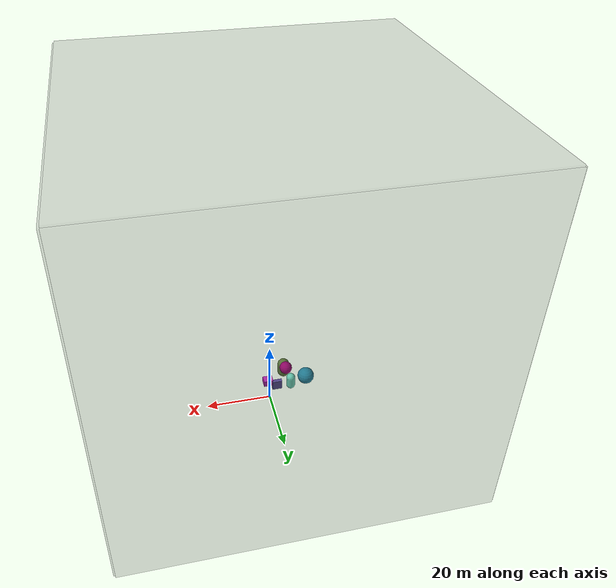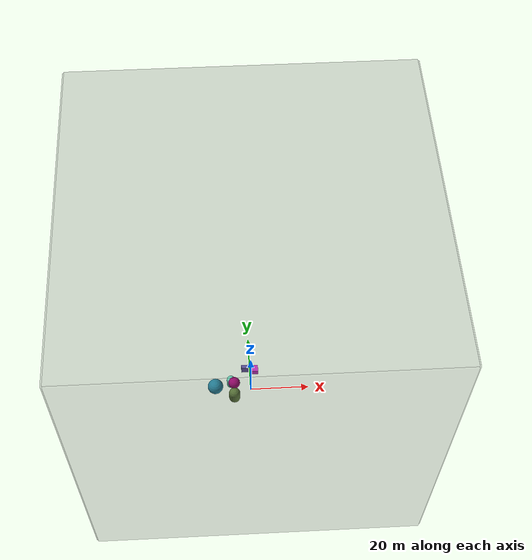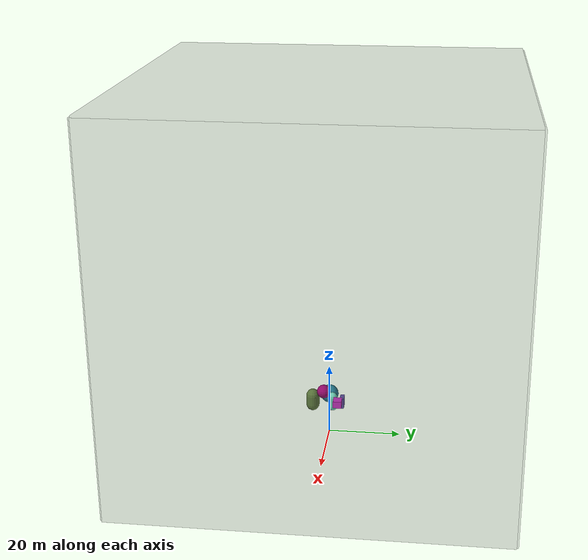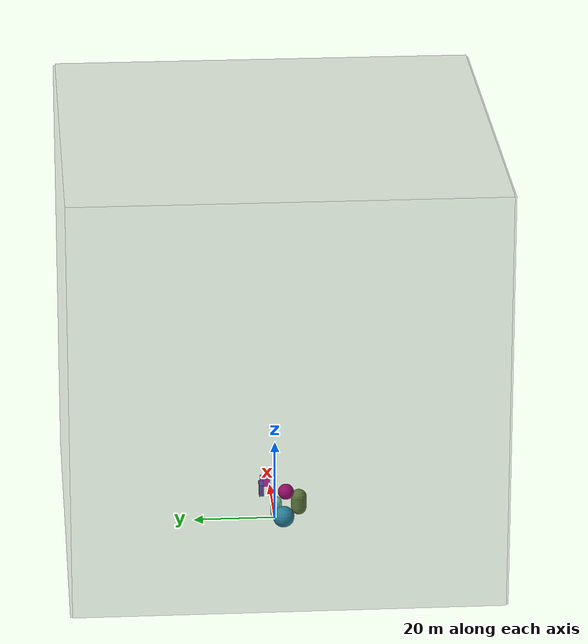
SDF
<!-- seed: 1722830644 -->
<sdf version='1.11'>
  <world name='world_0'>
    <gravity>0 0 -9.8066499999999994</gravity>
    <magnetic_field>5.5644999999999998e-06 2.2875799999999999e-05 -4.2388400000000002e-05</magnetic_field>
    <wind>
      <linear_velocity>5 6 0</linear_velocity>
    </wind>
    <physics default='false' type='ode'>
      <max_step_size>0.001</max_step_size>
      <real_time_factor>1</real_time_factor>
      <max_contacts>20</max_contacts>
    </physics>
    <model name='model_620'>
      <static>false</static>
      <self_collide>false</self_collide>
      <allow_auto_disable>true</allow_auto_disable>
      <enable_wind>false</enable_wind>
      <pose>-8.7825502009677514 1.2814883884424475 1.7874707938079981 0 0 0</pose>
      <link name='link_2787'>
        <pose>3.0916705062352818 -6.7132869151331853 4.8853672655625848 0 0 0</pose>
        <inertial>
          <pose>0 0 0 0 0 0</pose>
          <mass>1</mass>
          <inertia>
            <ixx>1</ixx>
            <ixy>0</ixy>
            <ixz>0</ixz>
            <iyy>1</iyy>
            <iyz>0</iyz>
            <izz>1</izz>
          </inertia>
        </inertial>
        <enable_wind>false</enable_wind>
        <collision name='collision_2787'>
          <pose>0 0 0 0 0 0</pose>
          <geometry>
            <capsule>
              <radius>1.8859126087736804</radius>
              <length>2.6854850593282826</length>
            </capsule>
          </geometry>
          <surface>
            <contact>
              <collide_bitmask>255</collide_bitmask>
            </contact>
            <friction>
              <ode>
                <mu>1</mu>
                <mu2>1</mu2>
                <slip1>0</slip1>
                <slip2>0</slip2>
                <fdir1>0 0 0</fdir1>
              </ode>
            </friction>
          </surface>
        </collision>
        <visual name='visual_2787'>
          <pose>0 0 0 0 0 0</pose>
          <geometry>
            <capsule>
              <radius>1.8859126087736804</radius>
              <length>2.6854850593282826</length>
            </capsule>
          </geometry>
          <cast_shadows>true</cast_shadows>
          <laser_retro>0</laser_retro>
          <transparency>0</transparency>
          <visibility_flags>4294967295</visibility_flags>
          <material>
            <ambient>0.399397075 0.525695145 0.251024008 1</ambient>
            <diffuse>0.399397075 0.525695145 0.251024008 1</diffuse>
            <specular>0 0 0 1</specular>
            <emissive>0 0 0 1</emissive>
            <render_order>0</render_order>
            <lighting>true</lighting>
            <double_sided>false</double_sided>
            <shader type='pixel'/>
          </material>
        </visual>
      </link>
      <link name='link_2788'>
        <pose>2.0358466114806966 -1.0823147693989359 4.0404634519940466 0 0 0</pose>
        <inertial>
          <pose>0 0 0 0 0 0</pose>
          <mass>1</mass>
          <inertia>
            <ixx>1</ixx>
            <ixy>0</ixy>
            <ixz>0</ixz>
            <iyy>1</iyy>
            <iyz>0</iyz>
            <izz>1</izz>
          </inertia>
        </inertial>
        <enable_wind>false</enable_wind>
        <collision name='collision_2788'>
          <pose>0 0 0 0 0 0</pose>
          <geometry>
            <capsule>
              <radius>1.387069172041602</radius>
              <length>2.7800379269529309</length>
            </capsule>
          </geometry>
          <surface>
            <contact>
              <collide_bitmask>255</collide_bitmask>
            </contact>
            <friction>
              <ode>
                <mu>1</mu>
                <mu2>1</mu2>
                <slip1>0</slip1>
                <slip2>0</slip2>
                <fdir1>0 0 0</fdir1>
              </ode>
            </friction>
          </surface>
        </collision>
        <visual name='visual_2788'>
          <pose>0 0 0 0 0 0</pose>
          <geometry>
            <capsule>
              <radius>1.387069172041602</radius>
              <length>2.7800379269529309</length>
            </capsule>
          </geometry>
          <cast_shadows>true</cast_shadows>
          <laser_retro>0</laser_retro>
          <transparency>0</transparency>
          <visibility_flags>4294967295</visibility_flags>
          <material>
            <ambient>0.47973457 0.940891325 0.814894438 1</ambient>
            <diffuse>0.47973457 0.940891325 0.814894438 1</diffuse>
            <specular>0 0 0 1</specular>
            <emissive>0 0 0 1</emissive>
            <render_order>0</render_order>
            <lighting>true</lighting>
            <double_sided>false</double_sided>
            <shader type='pixel'/>
          </material>
        </visual>
      </link>
      <link name='link_2789'>
        <pose>-3.2808541868936452 -2.5620737619710461 3.8775885226496776 0 0 0</pose>
        <inertial>
          <pose>0 0 0 0 0 0</pose>
          <mass>1</mass>
          <inertia>
            <ixx>1</ixx>
            <ixy>0</ixy>
            <ixz>0</ixz>
            <iyy>1</iyy>
            <iyz>0</iyz>
            <izz>1</izz>
          </inertia>
        </inertial>
        <enable_wind>false</enable_wind>
        <collision name='collision_2789'>
          <pose>0 0 0 0 0 0</pose>
          <geometry>
            <sphere>
              <radius>2.6031197391650305</radius>
            </sphere>
          </geometry>
          <surface>
            <contact>
              <collide_bitmask>255</collide_bitmask>
            </contact>
            <friction>
              <ode>
                <mu>1</mu>
                <mu2>1</mu2>
                <slip1>0</slip1>
                <slip2>0</slip2>
                <fdir1>0 0 0</fdir1>
              </ode>
            </friction>
          </surface>
        </collision>
        <visual name='visual_2789'>
          <pose>0 0 0 0 0 0</pose>
          <geometry>
            <sphere>
              <radius>2.6031197391650305</radius>
            </sphere>
          </geometry>
          <cast_shadows>true</cast_shadows>
          <laser_retro>0</laser_retro>
          <transparency>0</transparency>
          <visibility_flags>4294967295</visibility_flags>
          <material>
            <ambient>0.157117143 0.58405441 0.692798793 1</ambient>
            <diffuse>0.157117143 0.58405441 0.692798793 1</diffuse>
            <specular>0 0 0 1</specular>
            <emissive>0 0 0 1</emissive>
            <render_order>0</render_order>
            <lighting>true</lighting>
            <double_sided>false</double_sided>
            <shader type='pixel'/>
          </material>
        </visual>
      </link>
      <joint name='joint_1858' type='gearbox'>
        <pose>0 0 0 0 0 0</pose>
        <parent>link_2789</parent>
        <child>link_2787</child>
        <axis>
          <xyz>0.59737483691013493 0.7999372757993527 0.056953129969300492</xyz>
          <limit>
            <lower>-inf</lower>
            <upper>inf</upper>
            <effort>inf</effort>
            <velocity>0.60658171087120016</velocity>
            <stiffness>100000000</stiffness>
            <dissipation>1</dissipation>
          </limit>
          <dynamics>
            <spring_reference>0</spring_reference>
            <spring_stiffness>0</spring_stiffness>
            <damping>0</damping>
            <friction>0</friction>
          </dynamics>
        </axis>
        <axis2>
          <xyz>0.92347861918292906 0.25689294828716963 0.28494429812213501</xyz>
          <limit>
            <lower>-inf</lower>
            <upper>inf</upper>
            <effort>inf</effort>
            <velocity>9.2791356085167731</velocity>
            <stiffness>100000000</stiffness>
            <dissipation>1</dissipation>
          </limit>
          <dynamics>
            <spring_reference>0</spring_reference>
            <spring_stiffness>0</spring_stiffness>
            <damping>0</damping>
            <friction>0</friction>
          </dynamics>
        </axis2>
      </joint>
      <joint name='joint_1859' type='prismatic'>
        <pose>0 0 0 0 0 0</pose>
        <parent>link_2787</parent>
        <child>link_2788</child>
        <axis>
          <xyz>0.15948079447761759 0.69078240903438481 0.7052556554622158</xyz>
          <limit>
            <lower>-inf</lower>
            <upper>inf</upper>
            <effort>inf</effort>
            <velocity>8.951494390472952</velocity>
            <stiffness>100000000</stiffness>
            <dissipation>1</dissipation>
          </limit>
          <dynamics>
            <spring_reference>0</spring_reference>
            <spring_stiffness>0</spring_stiffness>
            <damping>0</damping>
            <friction>0</friction>
          </dynamics>
        </axis>
        <axis2>
          <xyz>0.095191238955646199 0.82554443824674728 0.55625085034177824</xyz>
          <limit>
            <lower>-inf</lower>
            <upper>inf</upper>
            <effort>inf</effort>
            <velocity>7.9722564043238915</velocity>
            <stiffness>100000000</stiffness>
            <dissipation>1</dissipation>
          </limit>
          <dynamics>
            <spring_reference>0</spring_reference>
            <spring_stiffness>0</spring_stiffness>
            <damping>0</damping>
            <friction>0</friction>
          </dynamics>
        </axis2>
      </joint>
    </model>
    <model name='model_621'>
      <static>true</static>
      <self_collide>true</self_collide>
      <allow_auto_disable>true</allow_auto_disable>
      <enable_wind>true</enable_wind>
      <pose>-7.337918291457286 1.4349160377668504 1.4406725338299675 0 0 0</pose>
      <link name='link_2790'>
        <pose>5.8108226656019077 2.0565223852022569 7.1591135063768707 0 0 0</pose>
        <inertial>
          <pose>0 0 0 0 0 0</pose>
          <mass>1</mass>
          <inertia>
            <ixx>1</ixx>
            <ixy>0</ixy>
            <ixz>0</ixz>
            <iyy>1</iyy>
            <iyz>0</iyz>
            <izz>1</izz>
          </inertia>
        </inertial>
        <enable_wind>false</enable_wind>
        <collision name='collision_2790'>
          <pose>0 0 0 0 0 0</pose>
          <geometry>
            <box>
              <size>2.9504611156001461 1.1445818519043618 2.9902822636473232</size>
            </box>
          </geometry>
          <surface>
            <contact>
              <collide_bitmask>255</collide_bitmask>
            </contact>
            <friction>
              <ode>
                <mu>1</mu>
                <mu2>1</mu2>
                <slip1>0</slip1>
                <slip2>0</slip2>
                <fdir1>0 0 0</fdir1>
              </ode>
            </friction>
          </surface>
        </collision>
        <visual name='visual_2790'>
          <pose>0 0 0 0 0 0</pose>
          <geometry>
            <box>
              <size>2.9504611156001461 1.1445818519043618 2.9902822636473232</size>
            </box>
          </geometry>
          <cast_shadows>true</cast_shadows>
          <laser_retro>0</laser_retro>
          <transparency>0</transparency>
          <visibility_flags>4294967295</visibility_flags>
          <material>
            <ambient>0.395807654 0.343531698 0.677281499 1</ambient>
            <diffuse>0.395807654 0.343531698 0.677281499 1</diffuse>
            <specular>0 0 0 1</specular>
            <emissive>0 0 0 1</emissive>
            <render_order>0</render_order>
            <lighting>true</lighting>
            <double_sided>false</double_sided>
            <shader type='pixel'/>
          </material>
        </visual>
      </link>
      <link name='link_2791'>
        <pose>8.4808355435866787 1.0148046819875578 8.0268610402372769 0 0 0</pose>
        <inertial>
          <pose>0 0 0 0 0 0</pose>
          <mass>1</mass>
          <inertia>
            <ixx>1</ixx>
            <ixy>0</ixy>
            <ixz>0</ixz>
            <iyy>1</iyy>
            <iyz>0</iyz>
            <izz>1</izz>
          </inertia>
        </inertial>
        <enable_wind>false</enable_wind>
        <collision name='collision_2791'>
          <pose>0 0 0 0 0 0</pose>
          <geometry>
            <box>
              <size>2.8327569088046349 2.3625926014330521 1.9969913001098114</size>
            </box>
          </geometry>
          <surface>
            <contact>
              <collide_bitmask>255</collide_bitmask>
            </contact>
            <friction>
              <ode>
                <mu>1</mu>
                <mu2>1</mu2>
                <slip1>0</slip1>
                <slip2>0</slip2>
                <fdir1>0 0 0</fdir1>
              </ode>
            </friction>
          </surface>
        </collision>
        <visual name='visual_2791'>
          <pose>0 0 0 0 0 0</pose>
          <geometry>
            <box>
              <size>2.8327569088046349 2.3625926014330521 1.9969913001098114</size>
            </box>
          </geometry>
          <cast_shadows>true</cast_shadows>
          <laser_retro>0</laser_retro>
          <transparency>0</transparency>
          <visibility_flags>4294967295</visibility_flags>
          <material>
            <ambient>0.845135987 0.191343546 0.810949326 1</ambient>
            <diffuse>0.845135987 0.191343546 0.810949326 1</diffuse>
            <specular>0 0 0 1</specular>
            <emissive>0 0 0 1</emissive>
            <render_order>0</render_order>
            <lighting>true</lighting>
            <double_sided>false</double_sided>
            <shader type='pixel'/>
          </material>
        </visual>
      </link>
      <link name='link_2792'>
        <pose>1.6568078654292542 -3.7042614256370898 7.9633105123760961 0 0 0</pose>
        <inertial>
          <pose>0 0 0 0 0 0</pose>
          <mass>1</mass>
          <inertia>
            <ixx>1</ixx>
            <ixy>0</ixy>
            <ixz>0</ixz>
            <iyy>1</iyy>
            <iyz>0</iyz>
            <izz>1</izz>
          </inertia>
        </inertial>
        <enable_wind>false</enable_wind>
        <collision name='collision_2792'>
          <pose>0 0 0 0 0 0</pose>
          <geometry>
            <sphere>
              <radius>1.9434313594822836</radius>
            </sphere>
          </geometry>
          <surface>
            <contact>
              <collide_bitmask>255</collide_bitmask>
            </contact>
            <friction>
              <ode>
                <mu>1</mu>
                <mu2>1</mu2>
                <slip1>0</slip1>
                <slip2>0</slip2>
                <fdir1>0 0 0</fdir1>
              </ode>
            </friction>
          </surface>
        </collision>
        <visual name='visual_2792'>
          <pose>0 0 0 0 0 0</pose>
          <geometry>
            <sphere>
              <radius>1.9434313594822836</radius>
            </sphere>
          </geometry>
          <cast_shadows>true</cast_shadows>
          <laser_retro>0</laser_retro>
          <transparency>0</transparency>
          <visibility_flags>4294967295</visibility_flags>
          <material>
            <ambient>0.691375434 0.0240447335 0.487844199 1</ambient>
            <diffuse>0.691375434 0.0240447335 0.487844199 1</diffuse>
            <specular>0 0 0 1</specular>
            <emissive>0 0 0 1</emissive>
            <render_order>0</render_order>
            <lighting>true</lighting>
            <double_sided>false</double_sided>
            <shader type='pixel'/>
          </material>
        </visual>
      </link>
      <joint name='joint_1860' type='screw'>
        <pose>0 0 0 0 0 0</pose>
        <parent>link_2791</parent>
        <child>link_2792</child>
        <axis>
          <xyz>0.61891948724722678 0.089725722578233996 0.78031273410950019</xyz>
          <limit>
            <lower>-inf</lower>
            <upper>inf</upper>
            <effort>inf</effort>
            <velocity>0.78847244739344235</velocity>
            <stiffness>100000000</stiffness>
            <dissipation>1</dissipation>
          </limit>
          <dynamics>
            <spring_reference>0</spring_reference>
            <spring_stiffness>0</spring_stiffness>
            <damping>0</damping>
            <friction>0</friction>
          </dynamics>
        </axis>
        <axis2>
          <xyz>0.68053716957799704 0.19296573623292837 0.70684749802404501</xyz>
          <limit>
            <lower>-inf</lower>
            <upper>inf</upper>
            <effort>inf</effort>
            <velocity>8.7650397617014857</velocity>
            <stiffness>100000000</stiffness>
            <dissipation>1</dissipation>
          </limit>
          <dynamics>
            <spring_reference>0</spring_reference>
            <spring_stiffness>0</spring_stiffness>
            <damping>0</damping>
            <friction>0</friction>
          </dynamics>
        </axis2>
        <thread_pitch>-6.2831853071795862</thread_pitch>
      </joint>
      <joint name='joint_1861' type='revolute'>
        <pose>0 0 0 0 0 0</pose>
        <parent>link_2792</parent>
        <child>link_2790</child>
        <axis>
          <xyz>0.26123616467145672 0.62415939315511426 0.73632921862709411</xyz>
          <limit>
            <lower>-inf</lower>
            <upper>inf</upper>
            <effort>inf</effort>
            <velocity>8.6873781282830169</velocity>
            <stiffness>100000000</stiffness>
            <dissipation>1</dissipation>
          </limit>
          <dynamics>
            <spring_reference>0</spring_reference>
            <spring_stiffness>0</spring_stiffness>
            <damping>0</damping>
            <friction>0</friction>
          </dynamics>
        </axis>
        <axis2>
          <xyz>0.19524271254706049 0.37304617975686521 0.90703739226454949</xyz>
          <limit>
            <lower>-inf</lower>
            <upper>inf</upper>
            <effort>inf</effort>
            <velocity>4.4882422960377708</velocity>
            <stiffness>100000000</stiffness>
            <dissipation>1</dissipation>
          </limit>
          <dynamics>
            <spring_reference>0</spring_reference>
            <spring_stiffness>0</spring_stiffness>
            <damping>0</damping>
            <friction>0</friction>
          </dynamics>
        </axis2>
      </joint>
    </model>
    <model name='ground_model'>
      <static>true</static>
      <self_collide>false</self_collide>
      <allow_auto_disable>true</allow_auto_disable>
      <enable_wind>false</enable_wind>
      <pose>0 0 0 0 0 0</pose>
      <link name='ground_link'>
        <pose>0 0 0 0 0 0</pose>
        <inertial>
          <pose>0 0 0 0 0 0</pose>
          <mass>1</mass>
          <inertia>
            <ixx>1</ixx>
            <ixy>0</ixy>
            <ixz>0</ixz>
            <iyy>1</iyy>
            <iyz>0</iyz>
            <izz>1</izz>
          </inertia>
        </inertial>
        <enable_wind>false</enable_wind>
        <collision name='ground_collision'>
          <pose>0 0 0 0 0 0</pose>
          <geometry>
            <plane>
              <normal>0 0 1</normal>
              <size>100 100</size>
            </plane>
          </geometry>
          <surface>
            <contact>
              <collide_bitmask>255</collide_bitmask>
            </contact>
            <friction>
              <ode>
                <mu>1</mu>
                <mu2>1</mu2>
                <slip1>0</slip1>
                <slip2>0</slip2>
                <fdir1>0 0 0</fdir1>
              </ode>
            </friction>
          </surface>
        </collision>
      </link>
    </model>
    <model name='ceiling_model'>
      <static>true</static>
      <self_collide>false</self_collide>
      <allow_auto_disable>true</allow_auto_disable>
      <enable_wind>false</enable_wind>
      <pose>0 0 100 0 0 0</pose>
      <link name='ceiling_link'>
        <pose>0 0 0 0 0 0</pose>
        <inertial>
          <pose>0 0 0 0 0 0</pose>
          <mass>1</mass>
          <inertia>
            <ixx>1</ixx>
            <ixy>0</ixy>
            <ixz>0</ixz>
            <iyy>1</iyy>
            <iyz>0</iyz>
            <izz>1</izz>
          </inertia>
        </inertial>
        <enable_wind>false</enable_wind>
        <collision name='ceiling_collision'>
          <pose>0 0 0 0 0 0</pose>
          <geometry>
            <box>
              <size>102 102 3</size>
            </box>
          </geometry>
          <surface>
            <contact>
              <collide_bitmask>255</collide_bitmask>
            </contact>
            <friction>
              <ode>
                <mu>1</mu>
                <mu2>1</mu2>
                <slip1>0</slip1>
                <slip2>0</slip2>
                <fdir1>0 0 0</fdir1>
              </ode>
            </friction>
          </surface>
        </collision>
        <visual name='ceiling_visual'>
          <pose>0 0 0 0 0 0</pose>
          <geometry>
            <box>
              <size>102 102 3</size>
            </box>
          </geometry>
          <cast_shadows>true</cast_shadows>
          <laser_retro>0</laser_retro>
          <transparency>0</transparency>
          <visibility_flags>4294967295</visibility_flags>
          <material>
            <ambient>0.200000003 0.200000003 0.200000003 0.200000003</ambient>
            <diffuse>0.200000003 0.200000003 0.200000003 0.200000003</diffuse>
            <specular>0 0 0 1</specular>
            <emissive>0 0 0 1</emissive>
            <render_order>0</render_order>
            <lighting>true</lighting>
            <double_sided>false</double_sided>
            <shader type='pixel'/>
          </material>
        </visual>
      </link>
    </model>
    <model name='west_model'>
      <static>true</static>
      <self_collide>false</self_collide>
      <allow_auto_disable>true</allow_auto_disable>
      <enable_wind>false</enable_wind>
      <pose>0 50 50 0 0 0</pose>
      <link name='west_link'>
        <pose>0 0 0 0 0 0</pose>
        <inertial>
          <pose>0 0 0 0 0 0</pose>
          <mass>1</mass>
          <inertia>
            <ixx>1</ixx>
            <ixy>0</ixy>
            <ixz>0</ixz>
            <iyy>1</iyy>
            <iyz>0</iyz>
            <izz>1</izz>
          </inertia>
        </inertial>
        <enable_wind>false</enable_wind>
        <collision name='west_collision'>
          <pose>0 0 0 0 0 0</pose>
          <geometry>
            <box>
              <size>102 3 102</size>
            </box>
          </geometry>
          <surface>
            <contact>
              <collide_bitmask>255</collide_bitmask>
            </contact>
            <friction>
              <ode>
                <mu>1</mu>
                <mu2>1</mu2>
                <slip1>0</slip1>
                <slip2>0</slip2>
                <fdir1>0 0 0</fdir1>
              </ode>
            </friction>
          </surface>
        </collision>
        <visual name='west_visual'>
          <pose>0 0 0 0 0 0</pose>
          <geometry>
            <box>
              <size>102 3 102</size>
            </box>
          </geometry>
          <cast_shadows>true</cast_shadows>
          <laser_retro>0</laser_retro>
          <transparency>0</transparency>
          <visibility_flags>4294967295</visibility_flags>
          <material>
            <ambient>0.200000003 0.200000003 0.200000003 0.200000003</ambient>
            <diffuse>0.200000003 0.200000003 0.200000003 0.200000003</diffuse>
            <specular>0 0 0 1</specular>
            <emissive>0 0 0 1</emissive>
            <render_order>0</render_order>
            <lighting>true</lighting>
            <double_sided>false</double_sided>
            <shader type='pixel'/>
          </material>
        </visual>
      </link>
    </model>
    <model name='east_model'>
      <static>true</static>
      <self_collide>false</self_collide>
      <allow_auto_disable>true</allow_auto_disable>
      <enable_wind>false</enable_wind>
      <pose>0 -50 50 0 0 0</pose>
      <link name='east_link'>
        <pose>0 0 0 0 0 0</pose>
        <inertial>
          <pose>0 0 0 0 0 0</pose>
          <mass>1</mass>
          <inertia>
            <ixx>1</ixx>
            <ixy>0</ixy>
            <ixz>0</ixz>
            <iyy>1</iyy>
            <iyz>0</iyz>
            <izz>1</izz>
          </inertia>
        </inertial>
        <enable_wind>false</enable_wind>
        <collision name='east_collision'>
          <pose>0 0 0 0 0 0</pose>
          <geometry>
            <box>
              <size>102 3 102</size>
            </box>
          </geometry>
          <surface>
            <contact>
              <collide_bitmask>255</collide_bitmask>
            </contact>
            <friction>
              <ode>
                <mu>1</mu>
                <mu2>1</mu2>
                <slip1>0</slip1>
                <slip2>0</slip2>
                <fdir1>0 0 0</fdir1>
              </ode>
            </friction>
          </surface>
        </collision>
        <visual name='east_visual'>
          <pose>0 0 0 0 0 0</pose>
          <geometry>
            <box>
              <size>102 3 102</size>
            </box>
          </geometry>
          <cast_shadows>true</cast_shadows>
          <laser_retro>0</laser_retro>
          <transparency>0</transparency>
          <visibility_flags>4294967295</visibility_flags>
          <material>
            <ambient>0.200000003 0.200000003 0.200000003 0.200000003</ambient>
            <diffuse>0.200000003 0.200000003 0.200000003 0.200000003</diffuse>
            <specular>0 0 0 1</specular>
            <emissive>0 0 0 1</emissive>
            <render_order>0</render_order>
            <lighting>true</lighting>
            <double_sided>false</double_sided>
            <shader type='pixel'/>
          </material>
        </visual>
      </link>
    </model>
    <model name='north_model'>
      <static>true</static>
      <self_collide>false</self_collide>
      <allow_auto_disable>true</allow_auto_disable>
      <enable_wind>false</enable_wind>
      <pose>50 0 50 0 0 0</pose>
      <link name='north_link'>
        <pose>0 0 0 0 0 0</pose>
        <inertial>
          <pose>0 0 0 0 0 0</pose>
          <mass>1</mass>
          <inertia>
            <ixx>1</ixx>
            <ixy>0</ixy>
            <ixz>0</ixz>
            <iyy>1</iyy>
            <iyz>0</iyz>
            <izz>1</izz>
          </inertia>
        </inertial>
        <enable_wind>false</enable_wind>
        <collision name='north_collision'>
          <pose>0 0 0 0 0 0</pose>
          <geometry>
            <box>
              <size>3 102 102</size>
            </box>
          </geometry>
          <surface>
            <contact>
              <collide_bitmask>255</collide_bitmask>
            </contact>
            <friction>
              <ode>
                <mu>1</mu>
                <mu2>1</mu2>
                <slip1>0</slip1>
                <slip2>0</slip2>
                <fdir1>0 0 0</fdir1>
              </ode>
            </friction>
          </surface>
        </collision>
        <visual name='north_visual'>
          <pose>0 0 0 0 0 0</pose>
          <geometry>
            <box>
              <size>3 102 102</size>
            </box>
          </geometry>
          <cast_shadows>true</cast_shadows>
          <laser_retro>0</laser_retro>
          <transparency>0</transparency>
          <visibility_flags>4294967295</visibility_flags>
          <material>
            <ambient>0.200000003 0.200000003 0.200000003 0.200000003</ambient>
            <diffuse>0.200000003 0.200000003 0.200000003 0.200000003</diffuse>
            <specular>0 0 0 1</specular>
            <emissive>0 0 0 1</emissive>
            <render_order>0</render_order>
            <lighting>true</lighting>
            <double_sided>false</double_sided>
            <shader type='pixel'/>
          </material>
        </visual>
      </link>
    </model>
    <model name='south_model'>
      <static>true</static>
      <self_collide>false</self_collide>
      <allow_auto_disable>true</allow_auto_disable>
      <enable_wind>false</enable_wind>
      <pose>-50 0 50 0 0 0</pose>
      <link name='south_link'>
        <pose>0 0 0 0 0 0</pose>
        <inertial>
          <pose>0 0 0 0 0 0</pose>
          <mass>1</mass>
          <inertia>
            <ixx>1</ixx>
            <ixy>0</ixy>
            <ixz>0</ixz>
            <iyy>1</iyy>
            <iyz>0</iyz>
            <izz>1</izz>
          </inertia>
        </inertial>
        <enable_wind>false</enable_wind>
        <collision name='south_collision'>
          <pose>0 0 0 0 0 0</pose>
          <geometry>
            <box>
              <size>3 102 102</size>
            </box>
          </geometry>
          <surface>
            <contact>
              <collide_bitmask>255</collide_bitmask>
            </contact>
            <friction>
              <ode>
                <mu>1</mu>
                <mu2>1</mu2>
                <slip1>0</slip1>
                <slip2>0</slip2>
                <fdir1>0 0 0</fdir1>
              </ode>
            </friction>
          </surface>
        </collision>
        <visual name='south_visual'>
          <pose>0 0 0 0 0 0</pose>
          <geometry>
            <box>
              <size>3 102 102</size>
            </box>
          </geometry>
          <cast_shadows>true</cast_shadows>
          <laser_retro>0</laser_retro>
          <transparency>0</transparency>
          <visibility_flags>4294967295</visibility_flags>
          <material>
            <ambient>0.200000003 0.200000003 0.200000003 0.200000003</ambient>
            <diffuse>0.200000003 0.200000003 0.200000003 0.200000003</diffuse>
            <specular>0 0 0 1</specular>
            <emissive>0 0 0 1</emissive>
            <render_order>0</render_order>
            <lighting>true</lighting>
            <double_sided>false</double_sided>
            <shader type='pixel'/>
          </material>
        </visual>
      </link>
    </model>
    <atmosphere type='adiabatic'>
      <temperature>288.14999999999998</temperature>
      <pressure>101325</pressure>
      <temperature_gradient>-0.0064999999999999997</temperature_gradient>
    </atmosphere>
    <scene>
      <ambient>0.400000006 0.400000006 0.400000006 1</ambient>
      <background>0.699999988 0.699999988 0.699999988 1</background>
      <grid>true</grid>
      <origin_visual>true</origin_visual>
      <shadows>true</shadows>
    </scene>
  </world>
</sdf>
